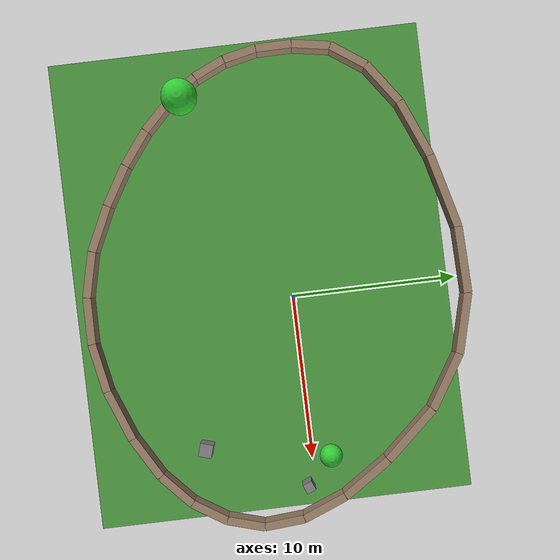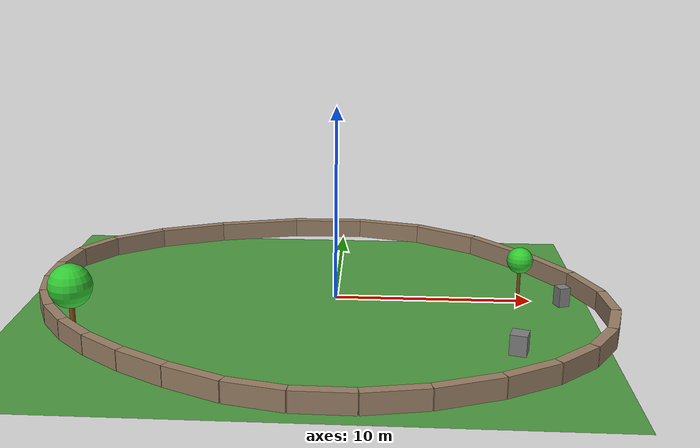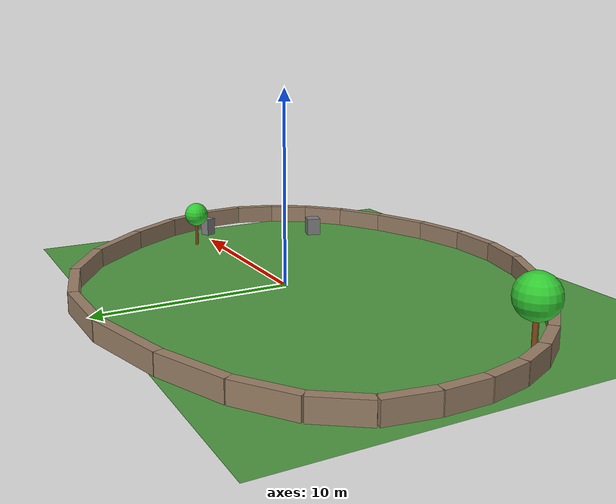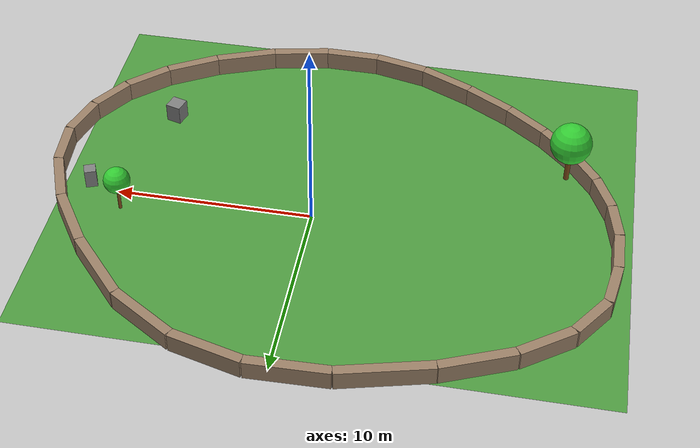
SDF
<?xml version="1.0" ?>
<sdf version="1.6">
  <world name="eval_lvl3_ep000">
    <light name="sun" type="directional">
      <cast_shadows>true</cast_shadows>
      <diffuse>0.8 0.8 0.8 1</diffuse>
      <specular>0.2 0.2 0.2 1</specular>
      <pose>0 0 10 0 0 0</pose>
      <direction>-0.5 0.5 -1</direction>
    </light>
    <include>
      <uri>model://ground_plane</uri>
    </include>
    <physics type="ode">
      <max_step_size>0.001</max_step_size>
      <real_time_factor>1</real_time_factor>
      <real_time_update_rate>1000</real_time_update_rate>
    </physics>
    <gravity>0 0 -9.8</gravity>
    <atmosphere type="adiabatic"/>
    <scene>
      <ambient>0.4 0.4 0.4 1</ambient>
      <background>0.7 0.7 0.7 1</background>
      <shadows>1</shadows>
    </scene>
    <model name="eval_lvl3_ep000_field">
      <static>true</static>
      <link name="link">
        <collision name="collision">
          <geometry>
            <plane>
              <normal>0 0 1</normal>
              <size>28.595515854174597 22.7720954255304</size>
            </plane>
          </geometry>
        </collision>
        <visual name="visual">
          <geometry>
            <plane>
              <normal>0 0 1</normal>
              <size>28.595515854174597 22.7720954255304</size>
            </plane>
          </geometry>
          <material>
            <script>
              <uri>file://media/materials/scripts/gazebo.material</uri>
              <name>Gazebo/Grass</name>
            </script>
          </material>
        </visual>
      </link>
      <pose>-1.479615600766433 -1.8901977386038022 0.01 0 0 0</pose>
    </model>
    <model name="eval_lvl3_ep000_boundary_0">
      <static>true</static>
      <pose>-13.127967975462074 -5.185732220973174 0.5 0 0 -0.9380561390355567</pose>
      <link name="link">
        <collision name="collision">
          <geometry>
            <box>
              <size>2.113124672347219 0.5 1.0</size>
            </box>
          </geometry>
        </collision>
        <visual name="visual">
          <geometry>
            <box>
              <size>2.113124672347219 0.5 1.0</size>
            </box>
          </geometry>
          <material>
            <ambient>0.4 0.3 0.2 1</ambient>
            <diffuse>0.6 0.5 0.4 1</diffuse>
          </material>
        </visual>
      </link>
    </model>
    <model name="eval_lvl3_ep000_boundary_1">
      <static>true</static>
      <pose>-11.70705966967911 -6.830906302939441 0.5 0 0 -0.7835409636680806</pose>
      <link name="link">
        <collision name="collision">
          <geometry>
            <box>
              <size>2.247549331038914 0.5 1.0</size>
            </box>
          </geometry>
        </collision>
        <visual name="visual">
          <geometry>
            <box>
              <size>2.247549331038914 0.5 1.0</size>
            </box>
          </geometry>
          <material>
            <ambient>0.4 0.3 0.2 1</ambient>
            <diffuse>0.6 0.5 0.4 1</diffuse>
          </material>
        </visual>
      </link>
    </model>
    <model name="eval_lvl3_ep000_boundary_2">
      <static>true</static>
      <pose>-9.943555577721991 -8.35833835204793 0.5 0 0 -0.6492514613979362</pose>
      <link name="link">
        <collision name="collision">
          <geometry>
            <box>
              <size>2.429018367167268 0.5 1.0</size>
            </box>
          </geometry>
        </collision>
        <visual name="visual">
          <geometry>
            <box>
              <size>2.429018367167268 0.5 1.0</size>
            </box>
          </geometry>
          <material>
            <ambient>0.4 0.3 0.2 1</ambient>
            <diffuse>0.6 0.5 0.4 1</diffuse>
          </material>
        </visual>
      </link>
    </model>
    <model name="eval_lvl3_ep000_boundary_3">
      <static>true</static>
      <pose>-7.837455699590714 -9.76802836829864 0.5 0 0 -0.5353611808732767</pose>
      <link name="link">
        <collision name="collision">
          <geometry>
            <box>
              <size>2.647876994618511 0.5 1.0</size>
            </box>
          </geometry>
        </collision>
        <visual name="visual">
          <geometry>
            <box>
              <size>2.647876994618511 0.5 1.0</size>
            </box>
          </geometry>
          <material>
            <ambient>0.4 0.3 0.2 1</ambient>
            <diffuse>0.6 0.5 0.4 1</diffuse>
          </material>
        </visual>
      </link>
    </model>
    <model name="eval_lvl3_ep000_boundary_4">
      <static>true</static>
      <pose>-5.38876003528528 -11.05997635169157 0.5 0 0 -0.439885961193953</pose>
      <link name="link">
        <collision name="collision">
          <geometry>
            <box>
              <size>2.895659691199142 0.5 1.0</size>
            </box>
          </geometry>
        </collision>
        <visual name="visual">
          <geometry>
            <box>
              <size>2.895659691199142 0.5 1.0</size>
            </box>
          </geometry>
          <material>
            <ambient>0.4 0.3 0.2 1</ambient>
            <diffuse>0.6 0.5 0.4 1</diffuse>
          </material>
        </visual>
      </link>
    </model>
    <model name="eval_lvl3_ep000_boundary_5">
      <static>true</static>
      <pose>-2.71870741589053 -11.992148833225334 0.5 0 0 -0.22803756942357462</pose>
      <link name="link">
        <collision name="collision">
          <geometry>
            <box>
              <size>2.7924016262308786 0.5 1.0</size>
            </box>
          </geometry>
        </collision>
        <visual name="visual">
          <geometry>
            <box>
              <size>2.7924016262308786 0.5 1.0</size>
            </box>
          </geometry>
          <material>
            <ambient>0.4 0.3 0.2 1</ambient>
            <diffuse>0.6 0.5 0.4 1</diffuse>
          </material>
        </visual>
      </link>
    </model>
    <model name="eval_lvl3_ep000_boundary_6">
      <static>true</static>
      <pose>0.05146332750869509 -12.322512343898541 0.5 0 0 -0.010445231741052049</pose>
      <link name="link">
        <collision name="collision">
          <geometry>
            <box>
              <size>2.820383659973061 0.5 1.0</size>
            </box>
          </geometry>
        </collision>
        <visual name="visual">
          <geometry>
            <box>
              <size>2.820383659973061 0.5 1.0</size>
            </box>
          </geometry>
          <material>
            <ambient>0.4 0.3 0.2 1</ambient>
            <diffuse>0.6 0.5 0.4 1</diffuse>
          </material>
        </visual>
      </link>
    </model>
    <model name="eval_lvl3_ep000_boundary_7">
      <static>true</static>
      <pose>2.9217521949123966 -12.05106688371119 0.5 0 0 0.1935338513979749</pose>
      <link name="link">
        <collision name="collision">
          <geometry>
            <box>
              <size>2.9759059946567636 0.5 1.0</size>
            </box>
          </geometry>
        </collision>
        <visual name="visual">
          <geometry>
            <box>
              <size>2.9759059946567636 0.5 1.0</size>
            </box>
          </geometry>
          <material>
            <ambient>0.4 0.3 0.2 1</ambient>
            <diffuse>0.6 0.5 0.4 1</diffuse>
          </material>
        </visual>
      </link>
    </model>
    <model name="eval_lvl3_ep000_boundary_8">
      <static>true</static>
      <pose>5.8921591863205744 -11.177812452663282 0.5 0 0 0.3707570467191095</pose>
      <link name="link">
        <collision name="collision">
          <geometry>
            <box>
              <size>3.240658010489524 0.5 1.0</size>
            </box>
          </geometry>
        </collision>
        <visual name="visual">
          <geometry>
            <box>
              <size>3.240658010489524 0.5 1.0</size>
            </box>
          </geometry>
          <material>
            <ambient>0.4 0.3 0.2 1</ambient>
            <diffuse>0.6 0.5 0.4 1</diffuse>
          </material>
        </visual>
      </link>
    </model>
    <model name="eval_lvl3_ep000_boundary_9">
      <static>true</static>
      <pose>8.615652566658191 -9.87450169387903 0.5 0 0 0.53328333545985</pose>
      <link name="link">
        <collision name="collision">
          <geometry>
            <box>
              <size>2.817792016155097 0.5 1.0</size>
            </box>
          </geometry>
        </collision>
        <visual name="visual">
          <geometry>
            <box>
              <size>2.817792016155097 0.5 1.0</size>
            </box>
          </geometry>
          <material>
            <ambient>0.4 0.3 0.2 1</ambient>
            <diffuse>0.6 0.5 0.4 1</diffuse>
          </material>
        </visual>
      </link>
    </model>
    <model name="eval_lvl3_ep000_boundary_10">
      <static>true</static>
      <pose>10.745200600850215 -8.312887250482639 0.5 0 0 0.7451714156193961</pose>
      <link name="link">
        <collision name="collision">
          <geometry>
            <box>
              <size>2.493395894568158 0.5 1.0</size>
            </box>
          </geometry>
        </collision>
        <visual name="visual">
          <geometry>
            <box>
              <size>2.493395894568158 0.5 1.0</size>
            </box>
          </geometry>
          <material>
            <ambient>0.4 0.3 0.2 1</ambient>
            <diffuse>0.6 0.5 0.4 1</diffuse>
          </material>
        </visual>
      </link>
    </model>
    <model name="eval_lvl3_ep000_boundary_11">
      <static>true</static>
      <pose>12.280803288896642 -6.492969122474115 0.5 0 0 1.0046834996509364</pose>
      <link name="link">
        <collision name="collision">
          <geometry>
            <box>
              <size>2.309345808486831 0.5 1.0</size>
            </box>
          </geometry>
        </collision>
        <visual name="visual">
          <geometry>
            <box>
              <size>2.309345808486831 0.5 1.0</size>
            </box>
          </geometry>
          <material>
            <ambient>0.4 0.3 0.2 1</ambient>
            <diffuse>0.6 0.5 0.4 1</diffuse>
          </material>
        </visual>
      </link>
    </model>
    <model name="eval_lvl3_ep000_boundary_12">
      <static>true</static>
      <pose>13.222460630797471 -4.414747309853455 0.5 0 0 1.2866401276016557</pose>
      <link name="link">
        <collision name="collision">
          <geometry>
            <box>
              <size>2.299590566750196 0.5 1.0</size>
            </box>
          </geometry>
        </collision>
        <visual name="visual">
          <geometry>
            <box>
              <size>2.299590566750196 0.5 1.0</size>
            </box>
          </geometry>
          <material>
            <ambient>0.4 0.3 0.2 1</ambient>
            <diffuse>0.6 0.5 0.4 1</diffuse>
          </material>
        </visual>
      </link>
    </model>
    <model name="eval_lvl3_ep000_boundary_13">
      <static>true</static>
      <pose>13.448452470349794 -2.106661536886224 0.5 0 0 1.6506251403510168</pose>
      <link name="link">
        <collision name="collision">
          <geometry>
            <box>
              <size>2.416493523923391 0.5 1.0</size>
            </box>
          </geometry>
        </collision>
        <visual name="visual">
          <geometry>
            <box>
              <size>2.416493523923391 0.5 1.0</size>
            </box>
          </geometry>
          <material>
            <ambient>0.4 0.3 0.2 1</ambient>
            <diffuse>0.6 0.5 0.4 1</diffuse>
          </material>
        </visual>
      </link>
    </model>
    <model name="eval_lvl3_ep000_boundary_14">
      <static>true</static>
      <pose>12.837058651350702 0.4028484721620166 0.5 0 0 1.946669708312893</pose>
      <link name="link">
        <collision name="collision">
          <geometry>
            <box>
              <size>2.8061250962310473 0.5 1.0</size>
            </box>
          </geometry>
        </collision>
        <visual name="visual">
          <geometry>
            <box>
              <size>2.8061250962310473 0.5 1.0</size>
            </box>
          </geometry>
          <material>
            <ambient>0.4 0.3 0.2 1</ambient>
            <diffuse>0.6 0.5 0.4 1</diffuse>
          </material>
        </visual>
      </link>
    </model>
    <model name="eval_lvl3_ep000_boundary_15">
      <static>true</static>
      <pose>11.38827917380019 3.113782717291265 0.5 0 0 2.157083565931882</pose>
      <link name="link">
        <collision name="collision">
          <geometry>
            <box>
              <size>3.37532340499226 0.5 1.0</size>
            </box>
          </geometry>
        </collision>
        <visual name="visual">
          <geometry>
            <box>
              <size>3.37532340499226 0.5 1.0</size>
            </box>
          </geometry>
          <material>
            <ambient>0.4 0.3 0.2 1</ambient>
            <diffuse>0.6 0.5 0.4 1</diffuse>
          </material>
        </visual>
      </link>
    </model>
    <model name="eval_lvl3_ep000_boundary_16">
      <static>true</static>
      <pose>9.10211403769826 6.026141198501522 0.5 0 0 2.3023437566584546</pose>
      <link name="link">
        <collision name="collision">
          <geometry>
            <box>
              <size>4.049055574937964 0.5 1.0</size>
            </box>
          </geometry>
        </collision>
        <visual name="visual">
          <geometry>
            <box>
              <size>4.049055574937964 0.5 1.0</size>
            </box>
          </geometry>
          <material>
            <ambient>0.4 0.3 0.2 1</ambient>
            <diffuse>0.6 0.5 0.4 1</diffuse>
          </material>
        </visual>
      </link>
    </model>
    <model name="eval_lvl3_ep000_boundary_17">
      <static>true</static>
      <pose>6.179665886448403 8.518551109815945 0.5 0 0 2.580883447155311</pose>
      <link name="link">
        <collision name="collision">
          <geometry>
            <box>
              <size>3.707780435582512 0.5 1.0</size>
            </box>
          </geometry>
        </collision>
        <visual name="visual">
          <geometry>
            <box>
              <size>3.707780435582512 0.5 1.0</size>
            </box>
          </geometry>
          <material>
            <ambient>0.4 0.3 0.2 1</ambient>
            <diffuse>0.6 0.5 0.4 1</diffuse>
          </material>
        </visual>
      </link>
    </model>
    <model name="eval_lvl3_ep000_boundary_18">
      <static>true</static>
      <pose>2.82203736345411 9.96963964525769 0.5 0 0 2.886996417532333</pose>
      <link name="link">
        <collision name="collision">
          <geometry>
            <box>
              <size>3.694304372360602 0.5 1.0</size>
            </box>
          </geometry>
        </collision>
        <visual name="visual">
          <geometry>
            <box>
              <size>3.694304372360602 0.5 1.0</size>
            </box>
          </geometry>
          <material>
            <ambient>0.4 0.3 0.2 1</ambient>
            <diffuse>0.6 0.5 0.4 1</diffuse>
          </material>
        </visual>
      </link>
    </model>
    <model name="eval_lvl3_ep000_boundary_19">
      <static>true</static>
      <pose>-0.9707715312846196 10.379406804826758 0.5 0 0 -3.1139482032885804</pose>
      <link name="link">
        <collision name="collision">
          <geometry>
            <box>
              <size>4.011931973550758 0.5 1.0</size>
            </box>
          </geometry>
        </collision>
        <visual name="visual">
          <geometry>
            <box>
              <size>4.011931973550758 0.5 1.0</size>
            </box>
          </geometry>
          <material>
            <ambient>0.4 0.3 0.2 1</ambient>
            <diffuse>0.6 0.5 0.4 1</diffuse>
          </material>
        </visual>
      </link>
    </model>
    <model name="eval_lvl3_ep000_boundary_20">
      <static>true</static>
      <pose>-5.198760797767784 9.747852588523148 0.5 0 0 -2.8879907981236923</pose>
      <link name="link">
        <collision name="collision">
          <geometry>
            <box>
              <size>4.592469472163866 0.5 1.0</size>
            </box>
          </geometry>
        </collision>
        <visual name="visual">
          <geometry>
            <box>
              <size>4.592469472163866 0.5 1.0</size>
            </box>
          </geometry>
          <material>
            <ambient>0.4 0.3 0.2 1</ambient>
            <diffuse>0.6 0.5 0.4 1</diffuse>
          </material>
        </visual>
      </link>
    </model>
    <model name="eval_lvl3_ep000_boundary_21">
      <static>true</static>
      <pose>-9.136682477902973 8.451506272181128 0.5 0 0 -2.744022430988842</pose>
      <link name="link">
        <collision name="collision">
          <geometry>
            <box>
              <size>3.720441716260006 0.5 1.0</size>
            </box>
          </geometry>
        </collision>
        <visual name="visual">
          <geometry>
            <box>
              <size>3.720441716260006 0.5 1.0</size>
            </box>
          </geometry>
          <material>
            <ambient>0.4 0.3 0.2 1</ambient>
            <diffuse>0.6 0.5 0.4 1</diffuse>
          </material>
        </visual>
      </link>
    </model>
    <model name="eval_lvl3_ep000_boundary_22">
      <static>true</static>
      <pose>-12.059288613597772 6.866897131634962 0.5 0 0 -2.52030818684619</pose>
      <link name="link">
        <collision name="collision">
          <geometry>
            <box>
              <size>2.9699359415009603 0.5 1.0</size>
            </box>
          </geometry>
        </collision>
        <visual name="visual">
          <geometry>
            <box>
              <size>2.9699359415009603 0.5 1.0</size>
            </box>
          </geometry>
          <material>
            <ambient>0.4 0.3 0.2 1</ambient>
            <diffuse>0.6 0.5 0.4 1</diffuse>
          </material>
        </visual>
      </link>
    </model>
    <model name="eval_lvl3_ep000_boundary_23">
      <static>true</static>
      <pose>-13.966579204852179 4.994025166884652 0.5 0 0 -2.177428025346932</pose>
      <link name="link">
        <collision name="collision">
          <geometry>
            <box>
              <size>2.4550508447589383 0.5 1.0</size>
            </box>
          </geometry>
        </collision>
        <visual name="visual">
          <geometry>
            <box>
              <size>2.4550508447589383 0.5 1.0</size>
            </box>
          </geometry>
          <material>
            <ambient>0.4 0.3 0.2 1</ambient>
            <diffuse>0.6 0.5 0.4 1</diffuse>
          </material>
        </visual>
      </link>
    </model>
    <model name="eval_lvl3_ep000_boundary_24">
      <static>true</static>
      <pose>-14.858554251666199 2.8328903779301955 0.5 0 0 -1.7359898445542543</pose>
      <link name="link">
        <collision name="collision">
          <geometry>
            <box>
              <size>2.3370819466344828 0.5 1.0</size>
            </box>
          </geometry>
        </collision>
        <visual name="visual">
          <geometry>
            <box>
              <size>2.3370819466344828 0.5 1.0</size>
            </box>
          </geometry>
          <material>
            <ambient>0.4 0.3 0.2 1</ambient>
            <diffuse>0.6 0.5 0.4 1</diffuse>
          </material>
        </visual>
      </link>
    </model>
    <model name="eval_lvl3_ep000_boundary_25">
      <static>true</static>
      <pose>-15.038630565348807 0.6027768147063384 0.5 0 0 -1.5595833000624018</pose>
      <link name="link">
        <collision name="collision">
          <geometry>
            <box>
              <size>2.155096406228389 0.5 1.0</size>
            </box>
          </geometry>
        </collision>
        <visual name="visual">
          <geometry>
            <box>
              <size>2.155096406228389 0.5 1.0</size>
            </box>
          </geometry>
          <material>
            <ambient>0.4 0.3 0.2 1</ambient>
            <diffuse>0.6 0.5 0.4 1</diffuse>
          </material>
        </visual>
      </link>
    </model>
    <model name="eval_lvl3_ep000_boundary_26">
      <static>true</static>
      <pose>-14.810224957208991 -1.4770314728521754 0.5 0 0 -1.3582356771435187</pose>
      <link name="link">
        <collision name="collision">
          <geometry>
            <box>
              <size>2.0508113827676517 0.5 1.0</size>
            </box>
          </geometry>
        </collision>
        <visual name="visual">
          <geometry>
            <box>
              <size>2.0508113827676517 0.5 1.0</size>
            </box>
          </geometry>
          <material>
            <ambient>0.4 0.3 0.2 1</ambient>
            <diffuse>0.6 0.5 0.4 1</diffuse>
          </material>
        </visual>
      </link>
    </model>
    <model name="eval_lvl3_ep000_boundary_27">
      <static>true</static>
      <pose>-14.173337427246747 -3.4065344847453463 0.5 0 0 -1.1449548384806996</pose>
      <link name="link">
        <collision name="collision">
          <geometry>
            <box>
              <size>2.0362004930598987 0.5 1.0</size>
            </box>
          </geometry>
        </collision>
        <visual name="visual">
          <geometry>
            <box>
              <size>2.0362004930598987 0.5 1.0</size>
            </box>
          </geometry>
          <material>
            <ambient>0.4 0.3 0.2 1</ambient>
            <diffuse>0.6 0.5 0.4 1</diffuse>
          </material>
        </visual>
      </link>
    </model>
    <model name="obstacle_0">
      <static>true</static>
      <pose>11.518322401697715 -0.3949078153888852 0.5 0 0 3.5200169609073737</pose>
      <link name="link">
        <collision name="collision">
          <geometry>
            <box>
              <size>0.5926632575058233 0.5926632575058233 1.0</size>
            </box>
          </geometry>
        </collision>
        <visual name="visual">
          <geometry>
            <box>
              <size>0.5926632575058233 0.5926632575058233 1.0</size>
            </box>
          </geometry>
          <material>
            <ambient>0.3 0.3 0.3 1</ambient>
            <diffuse>0.5 0.5 0.5 1</diffuse>
          </material>
        </visual>
      </link>
    </model>
    <model name="obstacle_1">
      <static>true</static>
      <pose>8.59204509401975 -6.305118423070981 0.5 0 0 4.422995088703932</pose>
      <link name="link">
        <collision name="collision">
          <geometry>
            <box>
              <size>0.799215908765291 0.799215908765291 1.0</size>
            </box>
          </geometry>
        </collision>
        <visual name="visual">
          <geometry>
            <box>
              <size>0.799215908765291 0.799215908765291 1.0</size>
            </box>
          </geometry>
          <material>
            <ambient>0.3 0.3 0.3 1</ambient>
            <diffuse>0.5 0.5 0.5 1</diffuse>
          </material>
        </visual>
      </link>
    </model>
    <model name="obstacle_2">
      <static>true</static>
      <pose>9.537935926331835 1.099645617491671 1.0 0 0 2.4329273216079357</pose>
      <link name="link">
        <collision name="trunk_collision">
          <geometry>
            <cylinder>
              <radius>0.08419780194209985</radius>
              <length>2.0</length>
            </cylinder>
          </geometry>
        </collision>
        <visual name="trunk_visual">
          <geometry>
            <cylinder>
              <radius>0.08419780194209985</radius>
              <length>2.0</length>
            </cylinder>
          </geometry>
          <material>
            <ambient>0.4 0.2 0.0 1</ambient>
            <diffuse>0.5 0.3 0.1 1</diffuse>
          </material>
        </visual>
        <collision name="crown_collision">
          <pose>0 0 0.8419780194209984 0 0 0</pose>
          <geometry>
            <sphere>
              <radius>0.6735824155367988</radius>
            </sphere>
          </geometry>
        </collision>
        <visual name="crown_visual">
          <pose>0 0 0.8419780194209984 0 0 0</pose>
          <geometry>
            <sphere>
              <radius>0.6735824155367988</radius>
            </sphere>
          </geometry>
          <material>
            <ambient>0.1 0.5 0.1 1</ambient>
            <diffuse>0.2 0.8 0.2 1</diffuse>
          </material>
        </visual>
      </link>
    </model>
    <model name="obstacle_3">
      <static>true</static>
      <pose>-12.285956982096044 -5.21937277486664 1.0 0 0 5.957761412890863</pose>
      <link name="link">
        <collision name="trunk_collision">
          <geometry>
            <cylinder>
              <radius>0.13240854379665407</radius>
              <length>2.0</length>
            </cylinder>
          </geometry>
        </collision>
        <visual name="trunk_visual">
          <geometry>
            <cylinder>
              <radius>0.13240854379665407</radius>
              <length>2.0</length>
            </cylinder>
          </geometry>
          <material>
            <ambient>0.4 0.2 0.0 1</ambient>
            <diffuse>0.5 0.3 0.1 1</diffuse>
          </material>
        </visual>
        <collision name="crown_collision">
          <pose>0 0 1.3240854379665405 0 0 0</pose>
          <geometry>
            <sphere>
              <radius>1.0592683503732325</radius>
            </sphere>
          </geometry>
        </collision>
        <visual name="crown_visual">
          <pose>0 0 1.3240854379665405 0 0 0</pose>
          <geometry>
            <sphere>
              <radius>1.0592683503732325</radius>
            </sphere>
          </geometry>
          <material>
            <ambient>0.1 0.5 0.1 1</ambient>
            <diffuse>0.2 0.8 0.2 1</diffuse>
          </material>
        </visual>
      </link>
    </model>
    <plugin name="gazebo_ros_state" filename="libgazebo_ros_state.so">
      <ros>
        <namespace>/</namespace>
      </ros>
    </plugin>
  </world>
</sdf>
